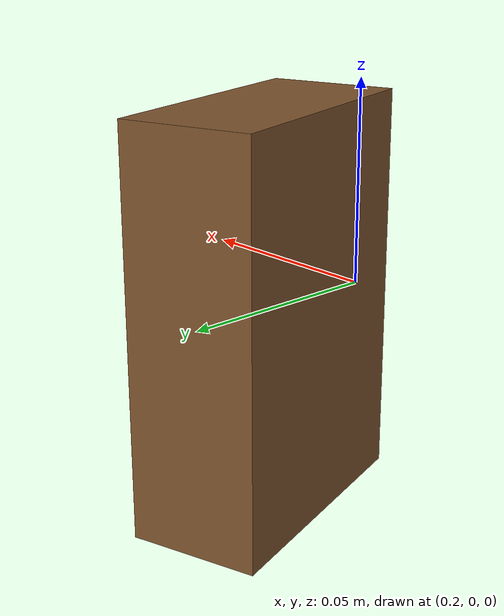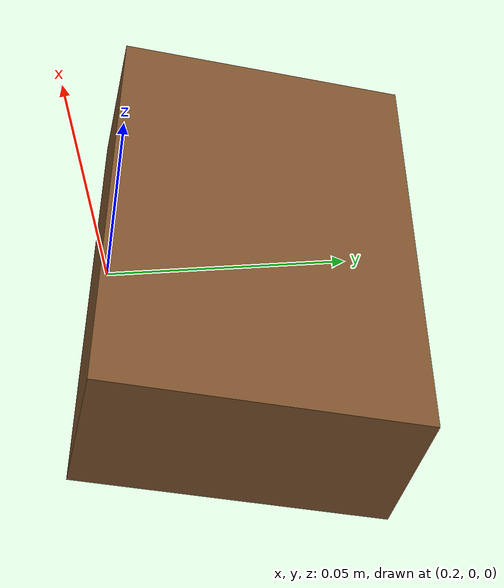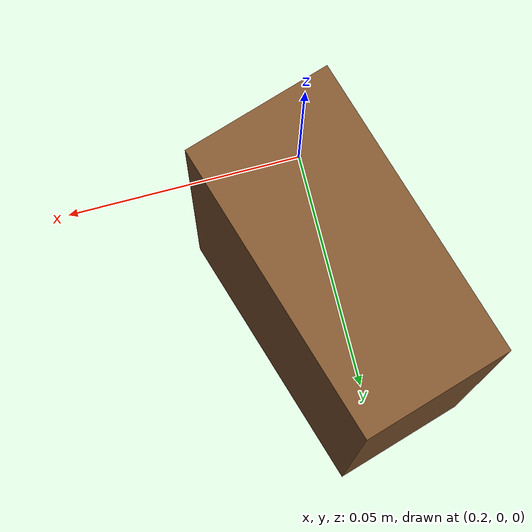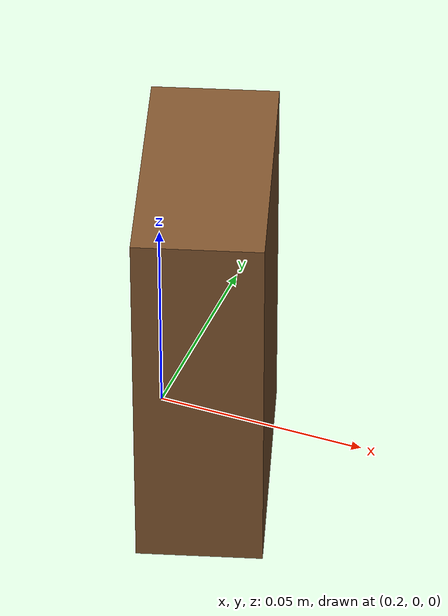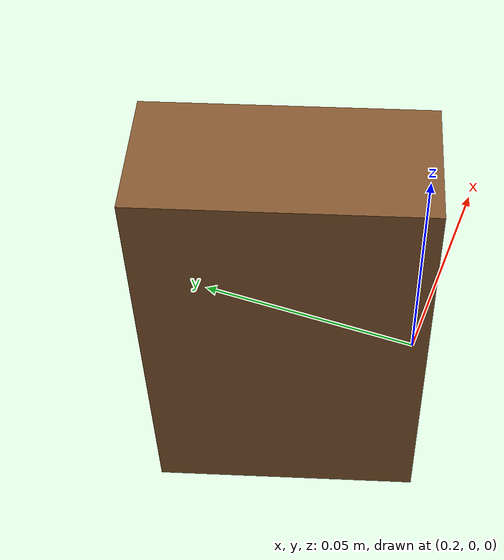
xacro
<robot name="box-setup"
    xmlns:xacro="https://www.ros.org/wiki/xacro">

    <xacro:include filename="$(find ros_basics_models)/urdf/utils/materials.xacro" />
    <xacro:include filename="$(find ros_basics_models)/urdf/utils/inertia.xacro" />

    <link name="world"/>

    <joint name="world_joint" type="fixed">
        <parent link="world"/>
        <child link="setup"/>
    </joint>

    <link name="setup">
        <visual>
            <origin xyz="0.2 0.03 0" rpy = "0 0 0.3"/>
            <geometry>
                <box size="0.031 0.063 0.095"/>
            </geometry>
            <material name="brown"/>
        </visual>
        <collision>
            <origin xyz="0.2 0.03 0" rpy = "0 0 0.3"/>
            <geometry>
                <box size="0.031 0.063 0.095"/>
            </geometry>
        </collision>
        <inertial>
            <mass value="0.1"/>
            <xacro:box_inertia mass="0.1" x="0.031" y="0.063" z="0.095" />
        </inertial>
    </link>

    <gazebo reference="setup">
        <material>Gazebo/WoodFloor</material>
    </gazebo>

</robot>
